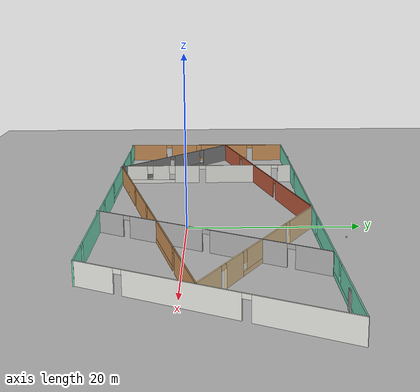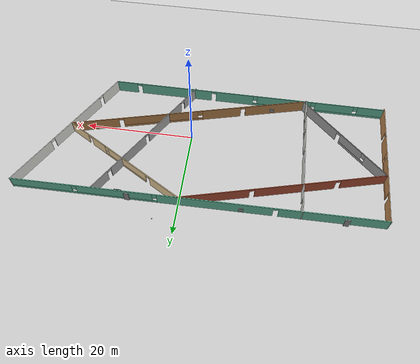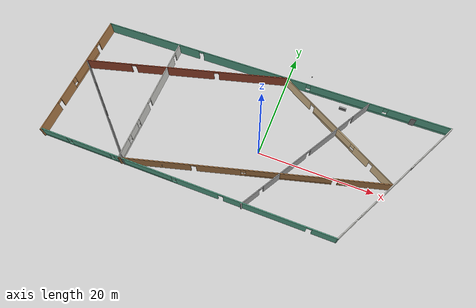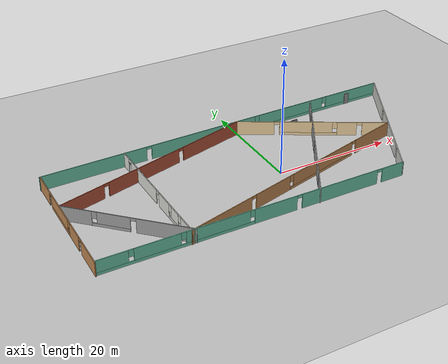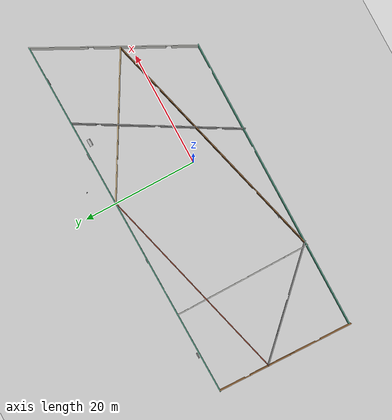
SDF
<sdf version="1.7">
 <world name="default">
  <model name="ground_plane">
   <static>1</static>
   <link name="link">
    <collision name="collision">
     <geometry><plane><normal>0 0 1</normal><size>100 100</size></plane></geometry>
     <surface>
      <contact><collide_bitmask>65535</collide_bitmask></contact>
      <friction><ode><mu>100</mu><mu2>50</mu2></ode></friction>
     </surface>
    </collision>
    <visual name="visual">
     <cast_shadows>0</cast_shadows>
     <geometry><plane><normal>0 0 1</normal><size>100 100</size></plane></geometry>
     <material>
      <script><uri>file://media/materials/scripts/gazebo.material</uri><name>Gazebo/Grey</name></script>
     </material>
    </visual>
   </link>
  </model>
  <model name="Building">
   <pose>-3.1496 2.4136 0 0 -0 0</pose>
   <link name="Door_0">
    <collision name="Door_0_Collision">
     <geometry><box><size>0.9 0.17 2</size></box></geometry>
     <pose>0 0 1 0 -0 0</pose>
    </collision>
    <visual name="Door_0_Visual">
     <pose>0 0 1 0 -0 0</pose>
     <geometry><box><size>0.9 0.17 2</size></box></geometry>
     <material>
      <script><uri>file://media/materials/scripts/gazebo.material</uri><name>Gazebo/Grey</name></script>
     </material>
    </visual>
    <pose>-25.1642 11.9657 0 0 -0 0</pose>
   </link>
   <link name="Door_19">
    <collision name="Door_19_Collision">
     <geometry><box><size>0.9 0.17 2</size></box></geometry>
     <pose>0 0 1 0 -0 0</pose>
    </collision>
    <visual name="Door_19_Visual">
     <pose>0 0 1 0 -0 0</pose>
     <geometry><box><size>0.9 0.17 2</size></box></geometry>
     <material>
      <script><uri>file://media/materials/scripts/gazebo.material</uri><name>Gazebo/Grey</name></script>
     </material>
    </visual>
    <pose>26.0112 12.2744 0 0 -0 0</pose>
   </link>
   <link name="Door_25">
    <collision name="Door_25_Collision">
     <geometry><box><size>0.9 0.17 2</size></box></geometry>
     <pose>0 0 1 0 -0 0</pose>
    </collision>
    <visual name="Door_25_Visual">
     <pose>0 0 1 0 -0 0</pose>
     <geometry><box><size>0.9 0.17 2</size></box></geometry>
     <material>
      <script><uri>file://media/materials/scripts/gazebo.material</uri><name>Gazebo/Grey</name></script>
     </material>
    </visual>
    <pose>12.012 12.3054 0 0 -0 0</pose>
   </link>
   <link name="Wall_0">
    <pose>-32.1052 -0.483581 0 0 -0 1.54834</pose>
    <visual name="Wall_0_Visual_0">
     <pose>-9.26842 0 1.25 0 -0 0</pose>
     <geometry><box><size>5.57682 0.15 2.5</size></box></geometry>
     <material>
      <script><uri>file://media/materials/scripts/gazebo.material</uri><name>Gazebo/Wood</name></script>
      <ambient>1 1 1 1</ambient>
     </material>
     <meta><layer>0</layer></meta>
    </visual>
    <collision name="Wall_0_Collision_0">
     <geometry><box><size>5.57682 0.15 2.5</size></box></geometry>
     <pose>-9.26842 0 1.25 0 -0 0</pose>
    </collision>
    <visual name="Wall_0_Visual_1">
     <pose>-3.61912 0 1.25 0 -0 0</pose>
     <geometry><box><size>3.92177 0.15 2.5</size></box></geometry>
     <material>
      <script><uri>file://media/materials/scripts/gazebo.material</uri><name>Gazebo/Wood</name></script>
      <ambient>1 1 1 1</ambient>
     </material>
     <meta><layer>0</layer></meta>
    </visual>
    <collision name="Wall_0_Collision_1">
     <geometry><box><size>3.92177 0.15 2.5</size></box></geometry>
     <pose>-3.61912 0 1.25 0 -0 0</pose>
    </collision>
    <visual name="Wall_0_Visual_2">
     <pose>9.71831 0 1.25 0 -0 0</pose>
     <geometry><box><size>4.67703 0.15 2.5</size></box></geometry>
     <material>
      <script><uri>file://media/materials/scripts/gazebo.material</uri><name>Gazebo/Wood</name></script>
      <ambient>1 1 1 1</ambient>
     </material>
     <meta><layer>0</layer></meta>
    </visual>
    <collision name="Wall_0_Collision_2">
     <geometry><box><size>4.67703 0.15 2.5</size></box></geometry>
     <pose>9.71831 0 1.25 0 -0 0</pose>
    </collision>
    <visual name="Wall_0_Visual_3">
     <pose>2.41078 0 0.25 0 -0 0</pose>
     <geometry><box><size>8.13804 0.15 0.5</size></box></geometry>
     <material>
      <script><uri>file://media/materials/scripts/gazebo.material</uri><name>Gazebo/Wood</name></script>
      <ambient>1 1 1 1</ambient>
     </material>
     <meta><layer>0</layer></meta>
    </visual>
    <collision name="Wall_0_Collision_3">
     <geometry><box><size>8.13804 0.15 0.5</size></box></geometry>
     <pose>2.41078 0 0.25 0 -0 0</pose>
    </collision>
    <visual name="Wall_0_Visual_4">
     <pose>2.81078 0 1.5 0 -0 0</pose>
     <geometry><box><size>7.33803 0.15 2</size></box></geometry>
     <material>
      <script><uri>file://media/materials/scripts/gazebo.material</uri><name>Gazebo/Wood</name></script>
      <ambient>1 1 1 1</ambient>
     </material>
     <meta><layer>0</layer></meta>
    </visual>
    <collision name="Wall_0_Collision_4">
     <geometry><box><size>7.33803 0.15 2</size></box></geometry>
     <pose>2.81078 0 1.5 0 -0 0</pose>
    </collision>
    <visual name="Wall_0_Visual_5">
     <pose>-1.25824 0 1.9 0 -0 0</pose>
     <geometry><box><size>0.8 0.15 1.2</size></box></geometry>
     <material>
      <script><uri>file://media/materials/scripts/gazebo.material</uri><name>Gazebo/Wood</name></script>
      <ambient>1 1 1 1</ambient>
     </material>
     <meta><layer>0</layer></meta>
    </visual>
    <collision name="Wall_0_Collision_5">
     <geometry><box><size>0.8 0.15 1.2</size></box></geometry>
     <pose>-1.25824 0 1.9 0 -0 0</pose>
    </collision>
    <visual name="Wall_0_Visual_6">
     <pose>-6.03001 0 2.25 0 -0 0</pose>
     <geometry><box><size>0.9 0.15 0.5</size></box></geometry>
     <material>
      <script><uri>file://media/materials/scripts/gazebo.material</uri><name>Gazebo/Wood</name></script>
      <ambient>1 1 1 1</ambient>
     </material>
     <meta><layer>0</layer></meta>
    </visual>
    <collision name="Wall_0_Collision_6">
     <geometry><box><size>0.9 0.15 0.5</size></box></geometry>
     <pose>-6.03001 0 2.25 0 -0 0</pose>
    </collision>
    <visual name="Wall_0_Visual_7">
     <pose>6.9298 0 2.25 0 -0 0</pose>
     <geometry><box><size>0.9 0.15 0.5</size></box></geometry>
     <material>
      <script><uri>file://media/materials/scripts/gazebo.material</uri><name>Gazebo/Wood</name></script>
      <ambient>1 1 1 1</ambient>
     </material>
     <meta><layer>0</layer></meta>
    </visual>
    <collision name="Wall_0_Collision_7">
     <geometry><box><size>0.9 0.15 0.5</size></box></geometry>
     <pose>6.9298 0 2.25 0 -0 0</pose>
    </collision>
   </link>
   <link name="Wall_1">
    <pose>0.1492 11.9795 0 0 -0 0.015088</pose>
    <visual name="Wall_1_Visual_0">
     <pose>-23.0722 0 1.25 0 -0 0</pose>
     <geometry><box><size>18.1988 0.15 2.5</size></box></geometry>
     <material>
      <script><uri>file://media/materials/scripts/gazebo.material</uri><name>Gazebo/Grey</name></script>
      <ambient>0.435294 0.796078 0.67451 1</ambient>
     </material>
     <meta><layer>0</layer></meta>
    </visual>
    <collision name="Wall_1_Collision_0">
     <geometry><box><size>18.1988 0.15 2.5</size></box></geometry>
     <pose>-23.0722 0 1.25 0 -0 0</pose>
    </collision>
    <visual name="Wall_1_Visual_1">
     <pose>-3.237 0 1.25 0 -0 0</pose>
     <geometry><box><size>19.6716 0.15 2.5</size></box></geometry>
     <material>
      <script><uri>file://media/materials/scripts/gazebo.material</uri><name>Gazebo/Grey</name></script>
      <ambient>0.435294 0.796078 0.67451 1</ambient>
     </material>
     <meta><layer>0</layer></meta>
    </visual>
    <collision name="Wall_1_Collision_1">
     <geometry><box><size>19.6716 0.15 2.5</size></box></geometry>
     <pose>-3.237 0 1.25 0 -0 0</pose>
    </collision>
    <visual name="Wall_1_Visual_2">
     <pose>19.3852 0 0.25 0 -0 0</pose>
     <geometry><box><size>25.5729 0.15 0.5</size></box></geometry>
     <material>
      <script><uri>file://media/materials/scripts/gazebo.material</uri><name>Gazebo/Grey</name></script>
      <ambient>0.435294 0.796078 0.67451 1</ambient>
     </material>
     <meta><layer>0</layer></meta>
    </visual>
    <collision name="Wall_1_Collision_2">
     <geometry><box><size>25.5729 0.15 0.5</size></box></geometry>
     <pose>19.3852 0 0.25 0 -0 0</pose>
    </collision>
    <visual name="Wall_1_Visual_3">
     <pose>13.974 0 1.5 0 -0 0</pose>
     <geometry><box><size>13.1505 0.15 2</size></box></geometry>
     <material>
      <script><uri>file://media/materials/scripts/gazebo.material</uri><name>Gazebo/Grey</name></script>
      <ambient>0.435294 0.796078 0.67451 1</ambient>
     </material>
     <meta><layer>0</layer></meta>
    </visual>
    <collision name="Wall_1_Collision_3">
     <geometry><box><size>13.1505 0.15 2</size></box></geometry>
     <pose>13.974 0 1.5 0 -0 0</pose>
    </collision>
    <visual name="Wall_1_Visual_4">
     <pose>26.7605 0 1.5 0 -0 0</pose>
     <geometry><box><size>10.8224 0.15 2</size></box></geometry>
     <material>
      <script><uri>file://media/materials/scripts/gazebo.material</uri><name>Gazebo/Grey</name></script>
      <ambient>0.435294 0.796078 0.67451 1</ambient>
     </material>
     <meta><layer>0</layer></meta>
    </visual>
    <collision name="Wall_1_Collision_4">
     <geometry><box><size>10.8224 0.15 2</size></box></geometry>
     <pose>26.7605 0 1.5 0 -0 0</pose>
    </collision>
    <visual name="Wall_1_Visual_5">
     <pose>6.9988 0 1.9 0 -0 0</pose>
     <geometry><box><size>0.8 0.15 1.2</size></box></geometry>
     <material>
      <script><uri>file://media/materials/scripts/gazebo.material</uri><name>Gazebo/Grey</name></script>
      <ambient>0.435294 0.796078 0.67451 1</ambient>
     </material>
     <meta><layer>0</layer></meta>
    </visual>
    <collision name="Wall_1_Collision_5">
     <geometry><box><size>0.8 0.15 1.2</size></box></geometry>
     <pose>6.9988 0 1.9 0 -0 0</pose>
    </collision>
    <visual name="Wall_1_Visual_6">
     <pose>20.9493 0 1.9 0 -0 0</pose>
     <geometry><box><size>0.8 0.15 1.2</size></box></geometry>
     <material>
      <script><uri>file://media/materials/scripts/gazebo.material</uri><name>Gazebo/Grey</name></script>
      <ambient>0.435294 0.796078 0.67451 1</ambient>
     </material>
     <meta><layer>0</layer></meta>
    </visual>
    <collision name="Wall_1_Collision_6">
     <geometry><box><size>0.8 0.15 1.2</size></box></geometry>
     <pose>20.9493 0 1.9 0 -0 0</pose>
    </collision>
    <visual name="Wall_1_Visual_7">
     <pose>-13.5228 0 2.25 0 -0 0</pose>
     <geometry><box><size>0.9 0.15 0.5</size></box></geometry>
     <material>
      <script><uri>file://media/materials/scripts/gazebo.material</uri><name>Gazebo/Grey</name></script>
      <ambient>0.435294 0.796078 0.67451 1</ambient>
     </material>
     <meta><layer>0</layer></meta>
    </visual>
    <collision name="Wall_1_Collision_7">
     <geometry><box><size>0.9 0.15 0.5</size></box></geometry>
     <pose>-13.5228 0 2.25 0 -0 0</pose>
    </collision>
   </link>
   <link name="Wall_11">
    <pose>10.9787 -0.186477 0 0 -0 1.0472</pose>
    <visual name="Wall_11_Visual_0">
     <pose>-12.3766 0 1.25 0 -0 0</pose>
     <geometry><box><size>3.74686 0.15 2.5</size></box></geometry>
     <material>
      <script><uri>file://media/materials/scripts/gazebo.material</uri><name>Gazebo/Grey</name></script>
      <ambient>1 1 1 1</ambient>
     </material>
     <meta><layer>0</layer></meta>
    </visual>
    <collision name="Wall_11_Collision_0">
     <geometry><box><size>3.74686 0.15 2.5</size></box></geometry>
     <pose>-12.3766 0 1.25 0 -0 0</pose>
    </collision>
    <visual name="Wall_11_Visual_1">
     <pose>-4.96596 0 1.25 0 -0 0</pose>
     <geometry><box><size>9.27435 0.15 2.5</size></box></geometry>
     <material>
      <script><uri>file://media/materials/scripts/gazebo.material</uri><name>Gazebo/Grey</name></script>
      <ambient>1 1 1 1</ambient>
     </material>
     <meta><layer>0</layer></meta>
    </visual>
    <collision name="Wall_11_Collision_1">
     <geometry><box><size>9.27435 0.15 2.5</size></box></geometry>
     <pose>-4.96596 0 1.25 0 -0 0</pose>
    </collision>
    <visual name="Wall_11_Visual_2">
     <pose>4.98582 0 1.25 0 -0 0</pose>
     <geometry><box><size>8.82921 0.15 2.5</size></box></geometry>
     <material>
      <script><uri>file://media/materials/scripts/gazebo.material</uri><name>Gazebo/Grey</name></script>
      <ambient>1 1 1 1</ambient>
     </material>
     <meta><layer>0</layer></meta>
    </visual>
    <collision name="Wall_11_Collision_2">
     <geometry><box><size>8.82921 0.15 2.5</size></box></geometry>
     <pose>4.98582 0 1.25 0 -0 0</pose>
    </collision>
    <visual name="Wall_11_Visual_3">
     <pose>12.2752 0 1.25 0 -0 0</pose>
     <geometry><box><size>3.94958 0.15 2.5</size></box></geometry>
     <material>
      <script><uri>file://media/materials/scripts/gazebo.material</uri><name>Gazebo/Grey</name></script>
      <ambient>1 1 1 1</ambient>
     </material>
     <meta><layer>0</layer></meta>
    </visual>
    <collision name="Wall_11_Collision_3">
     <geometry><box><size>3.94958 0.15 2.5</size></box></geometry>
     <pose>12.2752 0 1.25 0 -0 0</pose>
    </collision>
    <visual name="Wall_11_Visual_4">
     <pose>-10.0531 0 2.25 0 -0 0</pose>
     <geometry><box><size>0.9 0.15 0.5</size></box></geometry>
     <material>
      <script><uri>file://media/materials/scripts/gazebo.material</uri><name>Gazebo/Grey</name></script>
      <ambient>1 1 1 1</ambient>
     </material>
     <meta><layer>0</layer></meta>
    </visual>
    <collision name="Wall_11_Collision_4">
     <geometry><box><size>0.9 0.15 0.5</size></box></geometry>
     <pose>-10.0531 0 2.25 0 -0 0</pose>
    </collision>
    <visual name="Wall_11_Visual_5">
     <pose>0.121212 0 2.25 0 -0 0</pose>
     <geometry><box><size>0.9 0.15 0.5</size></box></geometry>
     <material>
      <script><uri>file://media/materials/scripts/gazebo.material</uri><name>Gazebo/Grey</name></script>
      <ambient>1 1 1 1</ambient>
     </material>
     <meta><layer>0</layer></meta>
    </visual>
    <collision name="Wall_11_Collision_5">
     <geometry><box><size>0.9 0.15 0.5</size></box></geometry>
     <pose>0.121212 0 2.25 0 -0 0</pose>
    </collision>
    <visual name="Wall_11_Visual_6">
     <pose>9.85042 0 2.25 0 -0 0</pose>
     <geometry><box><size>0.9 0.15 0.5</size></box></geometry>
     <material>
      <script><uri>file://media/materials/scripts/gazebo.material</uri><name>Gazebo/Grey</name></script>
      <ambient>1 1 1 1</ambient>
     </material>
     <meta><layer>0</layer></meta>
    </visual>
    <collision name="Wall_11_Collision_6">
     <geometry><box><size>0.9 0.15 0.5</size></box></geometry>
     <pose>9.85042 0 2.25 0 -0 0</pose>
    </collision>
   </link>
   <link name="Wall_2">
    <pose>25.9469 0.109933 0 0 -0 -2.04897</pose>
    <visual name="Wall_2_Visual_0">
     <pose>-9.11112 0 1.25 0 -0 0</pose>
     <geometry><box><size>9.75682 0.15 2.5</size></box></geometry>
     <material>
      <script><uri>file://media/materials/scripts/gazebo.material</uri><name>Gazebo/CeilingTiled</name></script>
      <ambient>1 1 1 1</ambient>
     </material>
     <meta><layer>0</layer></meta>
    </visual>
    <collision name="Wall_2_Collision_0">
     <geometry><box><size>9.75682 0.15 2.5</size></box></geometry>
     <pose>-9.11112 0 1.25 0 -0 0</pose>
    </collision>
    <visual name="Wall_2_Visual_1">
     <pose>2.60929 0 1.25 0 -0 0</pose>
     <geometry><box><size>11.884 0.15 2.5</size></box></geometry>
     <material>
      <script><uri>file://media/materials/scripts/gazebo.material</uri><name>Gazebo/CeilingTiled</name></script>
      <ambient>1 1 1 1</ambient>
     </material>
     <meta><layer>0</layer></meta>
    </visual>
    <collision name="Wall_2_Collision_1">
     <geometry><box><size>11.884 0.15 2.5</size></box></geometry>
     <pose>2.60929 0 1.25 0 -0 0</pose>
    </collision>
    <visual name="Wall_2_Visual_2">
     <pose>11.7204 0 1.25 0 -0 0</pose>
     <geometry><box><size>4.53824 0.15 2.5</size></box></geometry>
     <material>
      <script><uri>file://media/materials/scripts/gazebo.material</uri><name>Gazebo/CeilingTiled</name></script>
      <ambient>1 1 1 1</ambient>
     </material>
     <meta><layer>0</layer></meta>
    </visual>
    <collision name="Wall_2_Collision_2">
     <geometry><box><size>4.53824 0.15 2.5</size></box></geometry>
     <pose>11.7204 0 1.25 0 -0 0</pose>
    </collision>
    <visual name="Wall_2_Visual_3">
     <pose>-3.78271 0 2.25 0 -0 0</pose>
     <geometry><box><size>0.9 0.15 0.5</size></box></geometry>
     <material>
      <script><uri>file://media/materials/scripts/gazebo.material</uri><name>Gazebo/CeilingTiled</name></script>
      <ambient>1 1 1 1</ambient>
     </material>
     <meta><layer>0</layer></meta>
    </visual>
    <collision name="Wall_2_Collision_3">
     <geometry><box><size>0.9 0.15 0.5</size></box></geometry>
     <pose>-3.78271 0 2.25 0 -0 0</pose>
    </collision>
    <visual name="Wall_2_Visual_4">
     <pose>9.0013 0 2.25 0 -0 0</pose>
     <geometry><box><size>0.9 0.15 0.5</size></box></geometry>
     <material>
      <script><uri>file://media/materials/scripts/gazebo.material</uri><name>Gazebo/CeilingTiled</name></script>
      <ambient>1 1 1 1</ambient>
     </material>
     <meta><layer>0</layer></meta>
    </visual>
    <collision name="Wall_2_Collision_4">
     <geometry><box><size>0.9 0.15 0.5</size></box></geometry>
     <pose>9.0013 0 2.25 0 -0 0</pose>
    </collision>
   </link>
   <link name="Wall_3">
    <pose>-6.27348 -12.2439 0 0 -0 3.14159</pose>
    <visual name="Wall_3_Visual_0">
     <pose>-23.9112 0 1.25 0 -0 0</pose>
     <geometry><box><size>4.17766 0.15 2.5</size></box></geometry>
     <material>
      <script><uri>file://media/materials/scripts/gazebo.material</uri><name>Gazebo/Grey</name></script>
      <ambient>0.435294 0.796078 0.67451 1</ambient>
     </material>
     <meta><layer>0</layer></meta>
    </visual>
    <collision name="Wall_3_Collision_0">
     <geometry><box><size>4.17766 0.15 2.5</size></box></geometry>
     <pose>-23.9112 0 1.25 0 -0 0</pose>
    </collision>
    <visual name="Wall_3_Visual_1">
     <pose>-13.9782 0 1.25 0 -0 0</pose>
     <geometry><box><size>13.8882 0.15 2.5</size></box></geometry>
     <material>
      <script><uri>file://media/materials/scripts/gazebo.material</uri><name>Gazebo/Grey</name></script>
      <ambient>0.435294 0.796078 0.67451 1</ambient>
     </material>
     <meta><layer>0</layer></meta>
    </visual>
    <collision name="Wall_3_Collision_1">
     <geometry><box><size>13.8882 0.15 2.5</size></box></geometry>
     <pose>-13.9782 0 1.25 0 -0 0</pose>
    </collision>
    <visual name="Wall_3_Visual_2">
     <pose>-2.48403 0 1.25 0 -0 0</pose>
     <geometry><box><size>7.30016 0.15 2.5</size></box></geometry>
     <material>
      <script><uri>file://media/materials/scripts/gazebo.material</uri><name>Gazebo/Grey</name></script>
      <ambient>0.435294 0.796078 0.67451 1</ambient>
     </material>
     <meta><layer>0</layer></meta>
    </visual>
    <collision name="Wall_3_Collision_2">
     <geometry><box><size>7.30016 0.15 2.5</size></box></geometry>
     <pose>-2.48403 0 1.25 0 -0 0</pose>
    </collision>
    <visual name="Wall_3_Visual_3">
     <pose>13.583 0 0.25 0 -0 0</pose>
     <geometry><box><size>24.8339 0.15 0.5</size></box></geometry>
     <material>
      <script><uri>file://media/materials/scripts/gazebo.material</uri><name>Gazebo/Grey</name></script>
      <ambient>0.435294 0.796078 0.67451 1</ambient>
     </material>
     <meta><layer>0</layer></meta>
    </visual>
    <collision name="Wall_3_Collision_3">
     <geometry><box><size>24.8339 0.15 0.5</size></box></geometry>
     <pose>13.583 0 0.25 0 -0 0</pose>
    </collision>
    <visual name="Wall_3_Visual_4">
     <pose>7.14759 0 1.5 0 -0 0</pose>
     <geometry><box><size>10.3631 0.15 2</size></box></geometry>
     <material>
      <script><uri>file://media/materials/scripts/gazebo.material</uri><name>Gazebo/Grey</name></script>
      <ambient>0.435294 0.796078 0.67451 1</ambient>
     </material>
     <meta><layer>0</layer></meta>
    </visual>
    <collision name="Wall_3_Collision_4">
     <geometry><box><size>10.3631 0.15 2</size></box></geometry>
     <pose>7.14759 0 1.5 0 -0 0</pose>
    </collision>
    <visual name="Wall_3_Visual_5">
     <pose>16.7493 0 1.5 0 -0 0</pose>
     <geometry><box><size>7.24039 0.15 2</size></box></geometry>
     <material>
      <script><uri>file://media/materials/scripts/gazebo.material</uri><name>Gazebo/Grey</name></script>
      <ambient>0.435294 0.796078 0.67451 1</ambient>
     </material>
     <meta><layer>0</layer></meta>
    </visual>
    <collision name="Wall_3_Collision_5">
     <geometry><box><size>7.24039 0.15 2</size></box></geometry>
     <pose>16.7493 0 1.5 0 -0 0</pose>
    </collision>
    <visual name="Wall_3_Visual_6">
     <pose>23.5848 0 1.5 0 -0 0</pose>
     <geometry><box><size>4.83048 0.15 2</size></box></geometry>
     <material>
      <script><uri>file://media/materials/scripts/gazebo.material</uri><name>Gazebo/Grey</name></script>
      <ambient>0.435294 0.796078 0.67451 1</ambient>
     </material>
     <meta><layer>0</layer></meta>
    </visual>
    <collision name="Wall_3_Collision_6">
     <geometry><box><size>4.83048 0.15 2</size></box></geometry>
     <pose>23.5848 0 1.5 0 -0 0</pose>
    </collision>
    <visual name="Wall_3_Visual_7">
     <pose>1.56605 0 1.9 0 -0 0</pose>
     <geometry><box><size>0.8 0.15 1.2</size></box></geometry>
     <material>
      <script><uri>file://media/materials/scripts/gazebo.material</uri><name>Gazebo/Grey</name></script>
      <ambient>0.435294 0.796078 0.67451 1</ambient>
     </material>
     <meta><layer>0</layer></meta>
    </visual>
    <collision name="Wall_3_Collision_7">
     <geometry><box><size>0.8 0.15 1.2</size></box></geometry>
     <pose>1.56605 0 1.9 0 -0 0</pose>
    </collision>
    <visual name="Wall_3_Visual_8">
     <pose>12.7291 0 1.9 0 -0 0</pose>
     <geometry><box><size>0.8 0.15 1.2</size></box></geometry>
     <material>
      <script><uri>file://media/materials/scripts/gazebo.material</uri><name>Gazebo/Grey</name></script>
      <ambient>0.435294 0.796078 0.67451 1</ambient>
     </material>
     <meta><layer>0</layer></meta>
    </visual>
    <collision name="Wall_3_Collision_8">
     <geometry><box><size>0.8 0.15 1.2</size></box></geometry>
     <pose>12.7291 0 1.9 0 -0 0</pose>
    </collision>
    <visual name="Wall_3_Visual_9">
     <pose>20.7695 0 1.9 0 -0 0</pose>
     <geometry><box><size>0.8 0.15 1.2</size></box></geometry>
     <material>
      <script><uri>file://media/materials/scripts/gazebo.material</uri><name>Gazebo/Grey</name></script>
      <ambient>0.435294 0.796078 0.67451 1</ambient>
     </material>
     <meta><layer>0</layer></meta>
    </visual>
    <collision name="Wall_3_Collision_9">
     <geometry><box><size>0.8 0.15 1.2</size></box></geometry>
     <pose>20.7695 0 1.9 0 -0 0</pose>
    </collision>
    <visual name="Wall_3_Visual_10">
     <pose>-21.3723 0 2.25 0 -0 0</pose>
     <geometry><box><size>0.9 0.15 0.5</size></box></geometry>
     <material>
      <script><uri>file://media/materials/scripts/gazebo.material</uri><name>Gazebo/Grey</name></script>
      <ambient>0.435294 0.796078 0.67451 1</ambient>
     </material>
     <meta><layer>0</layer></meta>
    </visual>
    <collision name="Wall_3_Collision_10">
     <geometry><box><size>0.9 0.15 0.5</size></box></geometry>
     <pose>-21.3723 0 2.25 0 -0 0</pose>
    </collision>
    <visual name="Wall_3_Visual_11">
     <pose>-6.58411 0 2.25 0 -0 0</pose>
     <geometry><box><size>0.9 0.15 0.5</size></box></geometry>
     <material>
      <script><uri>file://media/materials/scripts/gazebo.material</uri><name>Gazebo/Grey</name></script>
      <ambient>0.435294 0.796078 0.67451 1</ambient>
     </material>
     <meta><layer>0</layer></meta>
    </visual>
    <collision name="Wall_3_Collision_11">
     <geometry><box><size>0.9 0.15 0.5</size></box></geometry>
     <pose>-6.58411 0 2.25 0 -0 0</pose>
    </collision>
   </link>
   <link name="Wall_5">
    <pose>-17.7389 -0.299543 0 0 -0 -1.5708</pose>
    <visual name="Wall_5_Visual_0">
     <pose>-11.1121 0 1.25 0 -0 0</pose>
     <geometry><box><size>2.02579 0.15 2.5</size></box></geometry>
     <material>
      <script><uri>file://media/materials/scripts/gazebo.material</uri><name>Gazebo/CeilingTiled</name></script>
      <ambient>1 1 1 1</ambient>
     </material>
     <meta><layer>0</layer></meta>
    </visual>
    <collision name="Wall_5_Collision_0">
     <geometry><box><size>2.02579 0.15 2.5</size></box></geometry>
     <pose>-11.1121 0 1.25 0 -0 0</pose>
    </collision>
    <visual name="Wall_5_Visual_1">
     <pose>-4.50046 0 1.25 0 -0 0</pose>
     <geometry><box><size>9.3975 0.15 2.5</size></box></geometry>
     <material>
      <script><uri>file://media/materials/scripts/gazebo.material</uri><name>Gazebo/CeilingTiled</name></script>
      <ambient>1 1 1 1</ambient>
     </material>
     <meta><layer>0</layer></meta>
    </visual>
    <collision name="Wall_5_Collision_1">
     <geometry><box><size>9.3975 0.15 2.5</size></box></geometry>
     <pose>-4.50046 0 1.25 0 -0 0</pose>
    </collision>
    <visual name="Wall_5_Visual_2">
     <pose>2.82386 0 1.25 0 -0 0</pose>
     <geometry><box><size>3.45113 0.15 2.5</size></box></geometry>
     <material>
      <script><uri>file://media/materials/scripts/gazebo.material</uri><name>Gazebo/CeilingTiled</name></script>
      <ambient>1 1 1 1</ambient>
     </material>
     <meta><layer>0</layer></meta>
    </visual>
    <collision name="Wall_5_Collision_2">
     <geometry><box><size>3.45113 0.15 2.5</size></box></geometry>
     <pose>2.82386 0 1.25 0 -0 0</pose>
    </collision>
    <visual name="Wall_5_Visual_3">
     <pose>8.33721 0 0.25 0 -0 0</pose>
     <geometry><box><size>7.57558 0.15 0.5</size></box></geometry>
     <material>
      <script><uri>file://media/materials/scripts/gazebo.material</uri><name>Gazebo/CeilingTiled</name></script>
      <ambient>1 1 1 1</ambient>
     </material>
     <meta><layer>0</layer></meta>
    </visual>
    <collision name="Wall_5_Collision_3">
     <geometry><box><size>7.57558 0.15 0.5</size></box></geometry>
     <pose>8.33721 0 0.25 0 -0 0</pose>
    </collision>
    <visual name="Wall_5_Visual_4">
     <pose>6.50765 0 1.5 0 -0 0</pose>
     <geometry><box><size>2.31645 0.15 2</size></box></geometry>
     <material>
      <script><uri>file://media/materials/scripts/gazebo.material</uri><name>Gazebo/CeilingTiled</name></script>
      <ambient>1 1 1 1</ambient>
     </material>
     <meta><layer>0</layer></meta>
    </visual>
    <collision name="Wall_5_Collision_4">
     <geometry><box><size>2.31645 0.15 2</size></box></geometry>
     <pose>6.50765 0 1.5 0 -0 0</pose>
    </collision>
    <visual name="Wall_5_Visual_5">
     <pose>10.2954 0 1.5 0 -0 0</pose>
     <geometry><box><size>3.65912 0.15 2</size></box></geometry>
     <material>
      <script><uri>file://media/materials/scripts/gazebo.material</uri><name>Gazebo/CeilingTiled</name></script>
      <ambient>1 1 1 1</ambient>
     </material>
     <meta><layer>0</layer></meta>
    </visual>
    <collision name="Wall_5_Collision_5">
     <geometry><box><size>3.65912 0.15 2</size></box></geometry>
     <pose>10.2954 0 1.5 0 -0 0</pose>
    </collision>
    <visual name="Wall_5_Visual_6">
     <pose>4.94942 0 1.9 0 -0 0</pose>
     <geometry><box><size>0.8 0.15 1.2</size></box></geometry>
     <material>
      <script><uri>file://media/materials/scripts/gazebo.material</uri><name>Gazebo/CeilingTiled</name></script>
      <ambient>1 1 1 1</ambient>
     </material>
     <meta><layer>0</layer></meta>
    </visual>
    <collision name="Wall_5_Collision_6">
     <geometry><box><size>0.8 0.15 1.2</size></box></geometry>
     <pose>4.94942 0 1.9 0 -0 0</pose>
    </collision>
    <visual name="Wall_5_Visual_7">
     <pose>8.06588 0 1.9 0 -0 0</pose>
     <geometry><box><size>0.8 0.15 1.2</size></box></geometry>
     <material>
      <script><uri>file://media/materials/scripts/gazebo.material</uri><name>Gazebo/CeilingTiled</name></script>
      <ambient>1 1 1 1</ambient>
     </material>
     <meta><layer>0</layer></meta>
    </visual>
    <collision name="Wall_5_Collision_7">
     <geometry><box><size>0.8 0.15 1.2</size></box></geometry>
     <pose>8.06588 0 1.9 0 -0 0</pose>
    </collision>
    <visual name="Wall_5_Visual_8">
     <pose>-9.64921 0 2.25 0 -0 0</pose>
     <geometry><box><size>0.9 0.15 0.5</size></box></geometry>
     <material>
      <script><uri>file://media/materials/scripts/gazebo.material</uri><name>Gazebo/CeilingTiled</name></script>
      <ambient>1 1 1 1</ambient>
     </material>
     <meta><layer>0</layer></meta>
    </visual>
    <collision name="Wall_5_Collision_8">
     <geometry><box><size>0.9 0.15 0.5</size></box></geometry>
     <pose>-9.64921 0 2.25 0 -0 0</pose>
    </collision>
    <visual name="Wall_5_Visual_9">
     <pose>0.648291 0 2.25 0 -0 0</pose>
     <geometry><box><size>0.9 0.15 0.5</size></box></geometry>
     <material>
      <script><uri>file://media/materials/scripts/gazebo.material</uri><name>Gazebo/CeilingTiled</name></script>
      <ambient>1 1 1 1</ambient>
     </material>
     <meta><layer>0</layer></meta>
    </visual>
    <collision name="Wall_5_Collision_9">
     <geometry><box><size>0.9 0.15 0.5</size></box></geometry>
     <pose>0.648291 0 2.25 0 -0 0</pose>
    </collision>
   </link>
   <link name="Wall_6">
    <pose>3.80122 -6.57788 0 0 -0 0.261799</pose>
    <visual name="Wall_6_Visual_0">
     <pose>-16.3639 0 1.25 0 -0 0</pose>
     <geometry><box><size>12.0221 0.15 2.5</size></box></geometry>
     <material>
      <script><uri>file://media/materials/scripts/gazebo.material</uri><name>Gazebo/Wood</name></script>
      <ambient>1 1 1 1</ambient>
     </material>
     <meta><layer>0</layer></meta>
    </visual>
    <collision name="Wall_6_Collision_0">
     <geometry><box><size>12.0221 0.15 2.5</size></box></geometry>
     <pose>-16.3639 0 1.25 0 -0 0</pose>
    </collision>
    <visual name="Wall_6_Visual_1">
     <pose>-5.76491 0 1.25 0 -0 0</pose>
     <geometry><box><size>7.37596 0.15 2.5</size></box></geometry>
     <material>
      <script><uri>file://media/materials/scripts/gazebo.material</uri><name>Gazebo/Wood</name></script>
      <ambient>1 1 1 1</ambient>
     </material>
     <meta><layer>0</layer></meta>
    </visual>
    <collision name="Wall_6_Collision_1">
     <geometry><box><size>7.37596 0.15 2.5</size></box></geometry>
     <pose>-5.76491 0 1.25 0 -0 0</pose>
    </collision>
    <visual name="Wall_6_Visual_2">
     <pose>18.0508 0 1.25 0 -0 0</pose>
     <geometry><box><size>8.64846 0.15 2.5</size></box></geometry>
     <material>
      <script><uri>file://media/materials/scripts/gazebo.material</uri><name>Gazebo/Wood</name></script>
      <ambient>1 1 1 1</ambient>
     </material>
     <meta><layer>0</layer></meta>
    </visual>
    <collision name="Wall_6_Collision_2">
     <geometry><box><size>8.64846 0.15 2.5</size></box></geometry>
     <pose>18.0508 0 1.25 0 -0 0</pose>
    </collision>
    <visual name="Wall_6_Visual_3">
     <pose>5.3748 0 0.25 0 -0 0</pose>
     <geometry><box><size>14.9035 0.15 0.5</size></box></geometry>
     <material>
      <script><uri>file://media/materials/scripts/gazebo.material</uri><name>Gazebo/Wood</name></script>
      <ambient>1 1 1 1</ambient>
     </material>
     <meta><layer>0</layer></meta>
    </visual>
    <collision name="Wall_6_Collision_3">
     <geometry><box><size>14.9035 0.15 0.5</size></box></geometry>
     <pose>5.3748 0 0.25 0 -0 0</pose>
    </collision>
    <visual name="Wall_6_Visual_4">
     <pose>5.7748 0 1.5 0 -0 0</pose>
     <geometry><box><size>14.1035 0.15 2</size></box></geometry>
     <material>
      <script><uri>file://media/materials/scripts/gazebo.material</uri><name>Gazebo/Wood</name></script>
      <ambient>1 1 1 1</ambient>
     </material>
     <meta><layer>0</layer></meta>
    </visual>
    <collision name="Wall_6_Collision_4">
     <geometry><box><size>14.1035 0.15 2</size></box></geometry>
     <pose>5.7748 0 1.5 0 -0 0</pose>
    </collision>
    <visual name="Wall_6_Visual_5">
     <pose>-1.67693 0 1.9 0 -0 0</pose>
     <geometry><box><size>0.8 0.15 1.2</size></box></geometry>
     <material>
      <script><uri>file://media/materials/scripts/gazebo.material</uri><name>Gazebo/Wood</name></script>
      <ambient>1 1 1 1</ambient>
     </material>
     <meta><layer>0</layer></meta>
    </visual>
    <collision name="Wall_6_Collision_5">
     <geometry><box><size>0.8 0.15 1.2</size></box></geometry>
     <pose>-1.67693 0 1.9 0 -0 0</pose>
    </collision>
    <visual name="Wall_6_Visual_6">
     <pose>-9.90289 0 2.25 0 -0 0</pose>
     <geometry><box><size>0.9 0.15 0.5</size></box></geometry>
     <material>
      <script><uri>file://media/materials/scripts/gazebo.material</uri><name>Gazebo/Wood</name></script>
      <ambient>1 1 1 1</ambient>
     </material>
     <meta><layer>0</layer></meta>
    </visual>
    <collision name="Wall_6_Collision_6">
     <geometry><box><size>0.9 0.15 0.5</size></box></geometry>
     <pose>-9.90289 0 2.25 0 -0 0</pose>
    </collision>
    <visual name="Wall_6_Visual_7">
     <pose>13.2765 0 2.25 0 -0 0</pose>
     <geometry><box><size>0.9 0.15 0.5</size></box></geometry>
     <material>
      <script><uri>file://media/materials/scripts/gazebo.material</uri><name>Gazebo/Wood</name></script>
      <ambient>1 1 1 1</ambient>
     </material>
     <meta><layer>0</layer></meta>
    </visual>
    <collision name="Wall_6_Collision_7">
     <geometry><box><size>0.9 0.15 0.5</size></box></geometry>
     <pose>13.2765 0 2.25 0 -0 0</pose>
    </collision>
   </link>
   <link name="Wall_7">
    <pose>14.2562 5.59379 0 0 -0 2.61799</pose>
    <visual name="Wall_7_Visual_0">
     <pose>-10.6722 0 1.25 0 -0 0</pose>
     <geometry><box><size>4.4056 0.15 2.5</size></box></geometry>
     <material>
      <script><uri>file://media/materials/scripts/gazebo.material</uri><name>Gazebo/Grey</name></script>
      <ambient>0.921569 0.807843 0.615686 1</ambient>
     </material>
     <meta><layer>0</layer></meta>
    </visual>
    <collision name="Wall_7_Collision_0">
     <geometry><box><size>4.4056 0.15 2.5</size></box></geometry>
     <pose>-10.6722 0 1.25 0 -0 0</pose>
    </collision>
    <visual name="Wall_7_Visual_1">
     <pose>-5.90475 0 1.25 0 -0 0</pose>
     <geometry><box><size>3.3293 0.15 2.5</size></box></geometry>
     <material>
      <script><uri>file://media/materials/scripts/gazebo.material</uri><name>Gazebo/Grey</name></script>
      <ambient>0.921569 0.807843 0.615686 1</ambient>
     </material>
     <meta><layer>0</layer></meta>
    </visual>
    <collision name="Wall_7_Collision_1">
     <geometry><box><size>3.3293 0.15 2.5</size></box></geometry>
     <pose>-5.90475 0 1.25 0 -0 0</pose>
    </collision>
    <visual name="Wall_7_Visual_2">
     <pose>9.67634 0 1.25 0 -0 0</pose>
     <geometry><box><size>6.39732 0.15 2.5</size></box></geometry>
     <material>
      <script><uri>file://media/materials/scripts/gazebo.material</uri><name>Gazebo/Grey</name></script>
      <ambient>0.921569 0.807843 0.615686 1</ambient>
     </material>
     <meta><layer>0</layer></meta>
    </visual>
    <collision name="Wall_7_Collision_2">
     <geometry><box><size>6.39732 0.15 2.5</size></box></geometry>
     <pose>9.67634 0 1.25 0 -0 0</pose>
    </collision>
    <visual name="Wall_7_Visual_3">
     <pose>0.668792 0 0.25 0 -0 0</pose>
     <geometry><box><size>9.81778 0.15 0.5</size></box></geometry>
     <material>
      <script><uri>file://media/materials/scripts/gazebo.material</uri><name>Gazebo/Grey</name></script>
      <ambient>0.921569 0.807843 0.615686 1</ambient>
     </material>
     <meta><layer>0</layer></meta>
    </visual>
    <collision name="Wall_7_Collision_3">
     <geometry><box><size>9.81778 0.15 0.5</size></box></geometry>
     <pose>0.668792 0 0.25 0 -0 0</pose>
    </collision>
    <visual name="Wall_7_Visual_4">
     <pose>1.06879 0 1.5 0 -0 0</pose>
     <geometry><box><size>9.01778 0.15 2</size></box></geometry>
     <material>
      <script><uri>file://media/materials/scripts/gazebo.material</uri><name>Gazebo/Grey</name></script>
      <ambient>0.921569 0.807843 0.615686 1</ambient>
     </material>
     <meta><layer>0</layer></meta>
    </visual>
    <collision name="Wall_7_Collision_4">
     <geometry><box><size>9.01778 0.15 2</size></box></geometry>
     <pose>1.06879 0 1.5 0 -0 0</pose>
    </collision>
    <visual name="Wall_7_Visual_5">
     <pose>-3.8401 0 1.9 0 -0 0</pose>
     <geometry><box><size>0.8 0.15 1.2</size></box></geometry>
     <material>
      <script><uri>file://media/materials/scripts/gazebo.material</uri><name>Gazebo/Grey</name></script>
      <ambient>0.921569 0.807843 0.615686 1</ambient>
     </material>
     <meta><layer>0</layer></meta>
    </visual>
    <collision name="Wall_7_Collision_5">
     <geometry><box><size>0.8 0.15 1.2</size></box></geometry>
     <pose>-3.8401 0 1.9 0 -0 0</pose>
    </collision>
    <visual name="Wall_7_Visual_6">
     <pose>-8.0194 0 2.25 0 -0 0</pose>
     <geometry><box><size>0.9 0.15 0.5</size></box></geometry>
     <material>
      <script><uri>file://media/materials/scripts/gazebo.material</uri><name>Gazebo/Grey</name></script>
      <ambient>0.921569 0.807843 0.615686 1</ambient>
     </material>
     <meta><layer>0</layer></meta>
    </visual>
    <collision name="Wall_7_Collision_6">
     <geometry><box><size>0.9 0.15 0.5</size></box></geometry>
     <pose>-8.0194 0 2.25 0 -0 0</pose>
    </collision>
    <visual name="Wall_7_Visual_7">
     <pose>6.02768 0 2.25 0 -0 0</pose>
     <geometry><box><size>0.9 0.15 0.5</size></box></geometry>
     <material>
      <script><uri>file://media/materials/scripts/gazebo.material</uri><name>Gazebo/Grey</name></script>
      <ambient>0.921569 0.807843 0.615686 1</ambient>
     </material>
     <meta><layer>0</layer></meta>
    </visual>
    <collision name="Wall_7_Collision_7">
     <geometry><box><size>0.9 0.15 0.5</size></box></geometry>
     <pose>6.02768 0 2.25 0 -0 0</pose>
    </collision>
   </link>
   <link name="Wall_8">
    <pose>-14.3846 7.28975 0 0 -0 -2.87979</pose>
    <visual name="Wall_8_Visual_0">
     <pose>-12.0748 0 1.25 0 -0 0</pose>
     <geometry><box><size>12.3505 0.15 2.5</size></box></geometry>
     <material>
      <script><uri>file://media/materials/scripts/gazebo.material</uri><name>Gazebo/Bricks</name></script>
      <ambient>1 1 1 1</ambient>
     </material>
     <meta><layer>0</layer></meta>
    </visual>
    <collision name="Wall_8_Collision_0">
     <geometry><box><size>12.3505 0.15 2.5</size></box></geometry>
     <pose>-12.0748 0 1.25 0 -0 0</pose>
    </collision>
    <visual name="Wall_8_Visual_1">
     <pose>2.08172 0 1.25 0 -0 0</pose>
     <geometry><box><size>14.1624 0.15 2.5</size></box></geometry>
     <material>
      <script><uri>file://media/materials/scripts/gazebo.material</uri><name>Gazebo/Bricks</name></script>
      <ambient>1 1 1 1</ambient>
     </material>
     <meta><layer>0</layer></meta>
    </visual>
    <collision name="Wall_8_Collision_1">
     <geometry><box><size>14.1624 0.15 2.5</size></box></geometry>
     <pose>2.08172 0 1.25 0 -0 0</pose>
    </collision>
    <visual name="Wall_8_Visual_2">
     <pose>14.1565 0 1.25 0 -0 0</pose>
     <geometry><box><size>8.18706 0.15 2.5</size></box></geometry>
     <material>
      <script><uri>file://media/materials/scripts/gazebo.material</uri><name>Gazebo/Bricks</name></script>
      <ambient>1 1 1 1</ambient>
     </material>
     <meta><layer>0</layer></meta>
    </visual>
    <collision name="Wall_8_Collision_2">
     <geometry><box><size>8.18706 0.15 2.5</size></box></geometry>
     <pose>14.1565 0 1.25 0 -0 0</pose>
    </collision>
    <visual name="Wall_8_Visual_3">
     <pose>-5.44951 0 2.25 0 -0 0</pose>
     <geometry><box><size>0.9 0.15 0.5</size></box></geometry>
     <material>
      <script><uri>file://media/materials/scripts/gazebo.material</uri><name>Gazebo/Bricks</name></script>
      <ambient>1 1 1 1</ambient>
     </material>
     <meta><layer>0</layer></meta>
    </visual>
    <collision name="Wall_8_Collision_3">
     <geometry><box><size>0.9 0.15 0.5</size></box></geometry>
     <pose>-5.44951 0 2.25 0 -0 0</pose>
    </collision>
    <visual name="Wall_8_Visual_4">
     <pose>9.61294 0 2.25 0 -0 0</pose>
     <geometry><box><size>0.9 0.15 0.5</size></box></geometry>
     <material>
      <script><uri>file://media/materials/scripts/gazebo.material</uri><name>Gazebo/Bricks</name></script>
      <ambient>1 1 1 1</ambient>
     </material>
     <meta><layer>0</layer></meta>
    </visual>
    <collision name="Wall_8_Collision_4">
     <geometry><box><size>0.9 0.15 0.5</size></box></geometry>
     <pose>9.61294 0 2.25 0 -0 0</pose>
    </collision>
   </link>
   <link name="Wall_9">
    <pose>-24.4803 -4.87426 0 0 -0 -0.785398</pose>
    <visual name="Wall_9_Visual_0">
     <pose>-8.05819 0 1.25 0 -0 0</pose>
     <geometry><box><size>5.13362 0.15 2.5</size></box></geometry>
     <material>
      <script><uri>file://media/materials/scripts/gazebo.material</uri><name>Gazebo/Grey</name></script>
      <ambient>1 1 1 1</ambient>
     </material>
     <meta><layer>0</layer></meta>
    </visual>
    <collision name="Wall_9_Collision_0">
     <geometry><box><size>5.13362 0.15 2.5</size></box></geometry>
     <pose>-8.05819 0 1.25 0 -0 0</pose>
    </collision>
    <visual name="Wall_9_Visual_1">
     <pose>6.02457 0 1.25 0 -0 0</pose>
     <geometry><box><size>9.20086 0.15 2.5</size></box></geometry>
     <material>
      <script><uri>file://media/materials/scripts/gazebo.material</uri><name>Gazebo/Grey</name></script>
      <ambient>1 1 1 1</ambient>
     </material>
     <meta><layer>0</layer></meta>
    </visual>
    <collision name="Wall_9_Collision_1">
     <geometry><box><size>9.20086 0.15 2.5</size></box></geometry>
     <pose>6.02457 0 1.25 0 -0 0</pose>
    </collision>
    <visual name="Wall_9_Visual_2">
     <pose>-2.48362 0 0.25 0 -0 0</pose>
     <geometry><box><size>6.01552 0.15 0.5</size></box></geometry>
     <material>
      <script><uri>file://media/materials/scripts/gazebo.material</uri><name>Gazebo/Grey</name></script>
      <ambient>1 1 1 1</ambient>
     </material>
     <meta><layer>0</layer></meta>
    </visual>
    <collision name="Wall_9_Collision_2">
     <geometry><box><size>6.01552 0.15 0.5</size></box></geometry>
     <pose>-2.48362 0 0.25 0 -0 0</pose>
    </collision>
    <visual name="Wall_9_Visual_3">
     <pose>-2.08362 0 1.5 0 -0 0</pose>
     <geometry><box><size>5.21552 0.15 2</size></box></geometry>
     <material>
      <script><uri>file://media/materials/scripts/gazebo.material</uri><name>Gazebo/Grey</name></script>
      <ambient>1 1 1 1</ambient>
     </material>
     <meta><layer>0</layer></meta>
    </visual>
    <collision name="Wall_9_Collision_3">
     <geometry><box><size>5.21552 0.15 2</size></box></geometry>
     <pose>-2.08362 0 1.5 0 -0 0</pose>
    </collision>
    <visual name="Wall_9_Visual_4">
     <pose>-5.09138 0 1.9 0 -0 0</pose>
     <geometry><box><size>0.8 0.15 1.2</size></box></geometry>
     <material>
      <script><uri>file://media/materials/scripts/gazebo.material</uri><name>Gazebo/Grey</name></script>
      <ambient>1 1 1 1</ambient>
     </material>
     <meta><layer>0</layer></meta>
    </visual>
    <collision name="Wall_9_Collision_4">
     <geometry><box><size>0.8 0.15 1.2</size></box></geometry>
     <pose>-5.09138 0 1.9 0 -0 0</pose>
    </collision>
    <visual name="Wall_9_Visual_5">
     <pose>0.974136 0 2.25 0 -0 0</pose>
     <geometry><box><size>0.9 0.15 0.5</size></box></geometry>
     <material>
      <script><uri>file://media/materials/scripts/gazebo.material</uri><name>Gazebo/Grey</name></script>
      <ambient>1 1 1 1</ambient>
     </material>
     <meta><layer>0</layer></meta>
    </visual>
    <collision name="Wall_9_Collision_5">
     <geometry><box><size>0.9 0.15 0.5</size></box></geometry>
     <pose>0.974136 0 2.25 0 -0 0</pose>
    </collision>
   </link>
   <link name="Window_12">
    <collision name="Window_12_Collision">
     <geometry><box><size>0.8 0.17 0.8</size></box></geometry>
     <pose>0 0 0.4 0 -0 0</pose>
    </collision>
    <visual name="Window_12_Visual">
     <pose>0 0 0.4 0 -0 0</pose>
     <geometry><box><size>0.8 0.17 0.8</size></box></geometry>
     <material>
      <script><uri>file://media/materials/scripts/gazebo.material</uri><name>Gazebo/Grey</name></script>
     </material>
    </visual>
    <pose>-11.2545 -10.5177 0.5 0 -0 0</pose>
   </link>
   <link name="Window_8">
    <collision name="Window_8_Collision">
     <geometry><box><size>0.8 0.17 0.8</size></box></geometry>
     <pose>0 0 0.4 0 -0 0</pose>
    </collision>
    <visual name="Window_8_Visual">
     <pose>0 0 0.4 0 -0 0</pose>
     <geometry><box><size>0.8 0.17 0.8</size></box></geometry>
     <material>
      <script><uri>file://media/materials/scripts/gazebo.material</uri><name>Gazebo/Grey</name></script>
     </material>
    </visual>
    <pose>-7.59567 11.9734 0.5 0 -0 0</pose>
   </link>
   <static>1</static>
  </model>
  <model name="frc2016_lowbar">
   <link name="base">
    <inertial>
     <mass>50</mass>
     <inertia>
      <ixx>0.035543</ixx>
      <ixy>0</ixy>
      <ixz>0</ixz>
      <iyy>0.134412</iyy>
      <iyz>0</iyz>
      <izz>0.165376</izz>
     </inertia>
    </inertial>
    <visual name="platform">
     <pose>0 0 0.039065 0 -0 0</pose>
     <geometry><box><size>1.26 0.5996 0.07813</size></box></geometry>
    </visual>
    <collision name="platform">
     <pose>0 0 0.039065 0 -0 0</pose>
     <geometry><box><size>1.27 0.6096 0.07813</size></box></geometry>
    </collision>
    <visual name="right_column">
     <pose>-0.57845 -0.18464 0.26863 0 -0 0</pose>
     <geometry><cylinder><radius>0.0254</radius><length>0.381</length></cylinder></geometry>
    </visual>
    <collision name="right_column">
     <pose>-0.57845 -0.18464 0.26863 0 -0 0</pose>
     <geometry><cylinder><radius>0.0254</radius><length>0.381</length></cylinder></geometry>
    </collision>
    <visual name="left_column">
     <pose>0.57845 -0.18464 0.26863 0 -0 0</pose>
     <geometry><cylinder><radius>0.0254</radius><length>0.381</length></cylinder></geometry>
    </visual>
    <collision name="left_column">
     <pose>0.57845 -0.18464 0.26863 0 -0 0</pose>
     <geometry><cylinder><radius>0.0254</radius><length>0.381</length></cylinder></geometry>
    </collision>
    <visual name="horizontal">
     <pose>0 -0.18464 0.43556 0 1.5707 0</pose>
     <geometry><cylinder><radius>0.0254</radius><length>1.2018</length></cylinder></geometry>
    </visual>
    <collision name="horizontal">
     <pose>0 -0.18464 0.43556 0 1.5707 0</pose>
     <geometry><cylinder><radius>0.0254</radius><length>1.2018</length></cylinder></geometry>
    </collision>
   </link>
   <link name="wall">
    <pose>0 -0.1778 0.24323 0 -0 0</pose>
    <inertial>
     <mass>1</mass>
     <inertia>
      <ixx>0.00774528</ixx>
      <ixy>0</ixy>
      <ixz>0</ixz>
      <iyy>0.116613</iyy>
      <iyz>0</iyz>
      <izz>0.108874</izz>
     </inertia>
    </inertial>
    <visual name="visual">
     <geometry><box><size>1.1176 0.00635 0.3</size></box></geometry>
     <material><ambient>0.46 0.46 0.46 1</ambient><diffuse>0.46 0.46 0.46 1</diffuse></material>
    </visual>
    <collision name="collision"><geometry><box><size>1.143 0.00635 0.3</size></box></geometry></collision>
   </link>
   <joint name="bar_joint" type="revolute">
    <pose>0 0 0.36378 0 -0 0</pose>
    <parent>base</parent>
    <child>wall</child>
    <axis>
     <xyz>1 0 0</xyz>
     <limit><lower>-1.5707</lower><upper>1.5707</upper></limit>
     <dynamics><spring_reference>0</spring_reference><spring_stiffness>0</spring_stiffness></dynamics>
    </axis>
   </joint>
   <pose>10.9156 13.4338 -9e-06 -1.3e-05 2e-05 0.003685</pose>
  </model>
  <model name="my_ball">
   <link name="link_0">
    <inertial>
     <mass>1</mass>
     <inertia><ixx>0.1</ixx><ixy>0</ixy><ixz>0</ixz><iyy>0.1</iyy><iyz>0</iyz><izz>0.1</izz></inertia>
    </inertial>
    <visual name="visual">
     <geometry><sphere><radius>0.1</radius></sphere></geometry>
     <material>
      <lighting>1</lighting>
      <script><uri>file://media/materials/scripts/gazebo.material</uri><name>Gazebo/Grey</name></script>
      <shader type="pixel"><normal_map>__default__</normal_map></shader>
      <ambient>1 1 1 1</ambient>
      <diffuse>1 1 1 1</diffuse>
      <specular>1 1 1 1</specular>
      <emissive>1 1 1 1</emissive>
     </material>
    </visual>
    <collision name="collision">
     <geometry><sphere><radius>0.1</radius></sphere></geometry>
     <surface>
      <friction>
       <ode><mu>1</mu><mu2>1</mu2><fdir1>0 0 0</fdir1><slip1>0</slip1><slip2>0</slip2></ode>
       <torsional>
        <coefficient>1</coefficient>
        <patch_radius>0</patch_radius>
        <surface_radius>0</surface_radius>
        <use_patch_radius>1</use_patch_radius>
        <ode><slip>0</slip></ode>
       </torsional>
      </friction>
      <bounce><restitution_coefficient>0</restitution_coefficient><threshold>1e+06</threshold></bounce>
      <contact>
       <collide_without_contact>0</collide_without_contact>
       <collide_without_contact_bitmask>1</collide_without_contact_bitmask>
       <collide_bitmask>1</collide_bitmask>
       <ode>
        <soft_cfm>0</soft_cfm>
        <soft_erp>0.2</soft_erp>
        <kp>1e+13</kp>
        <kd>1</kd>
        <max_vel>0.01</max_vel>
        <min_depth>0</min_depth>
       </ode>
       <bullet>
        <split_impulse>1</split_impulse>
        <split_impulse_penetration_threshold>-0.01</split_impulse_penetration_threshold>
        <soft_cfm>0</soft_cfm>
        <soft_erp>0.2</soft_erp>
        <kp>1e+13</kp>
        <kd>1</kd>
       </bullet>
      </contact>
     </surface>
    </collision>
   </link>
   <static>0</static>
   <pose>3.85939 17.789 0.1 0 -0 0</pose>
  </model>
 </world>
</sdf>
